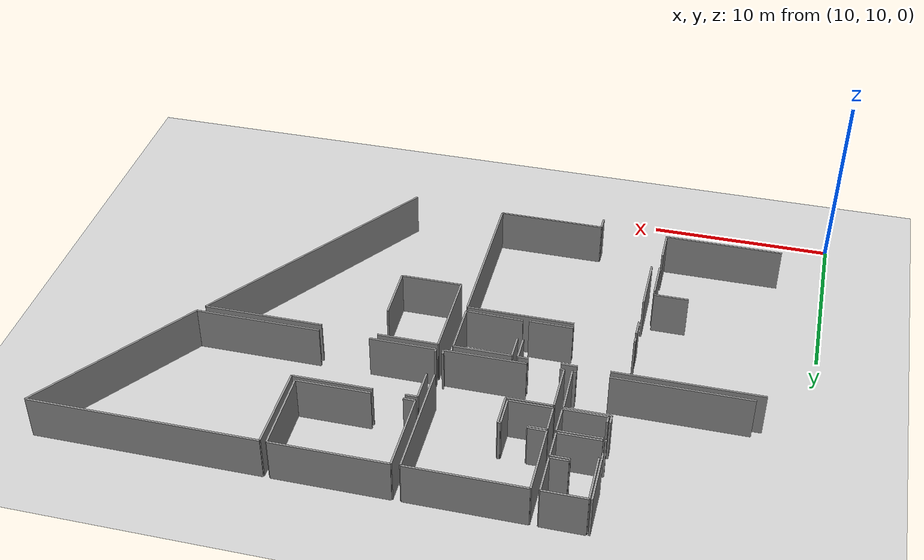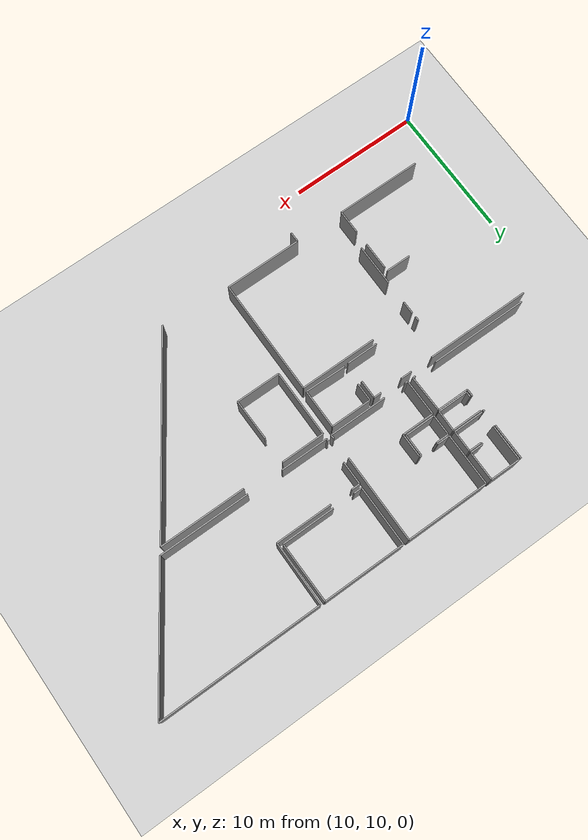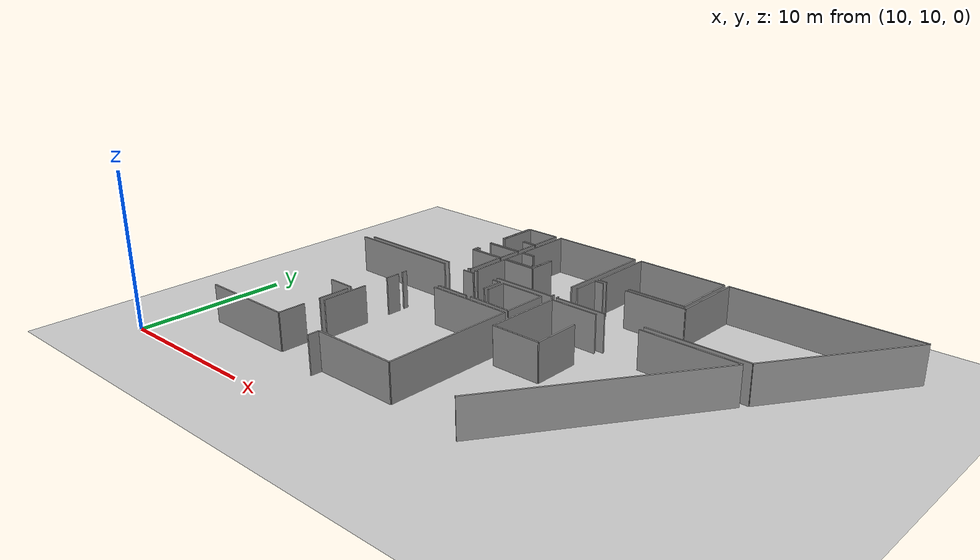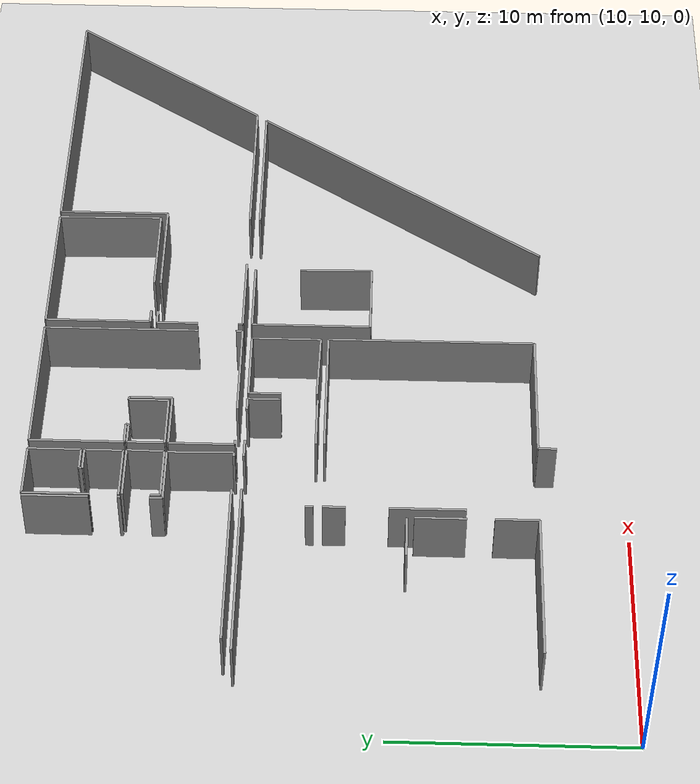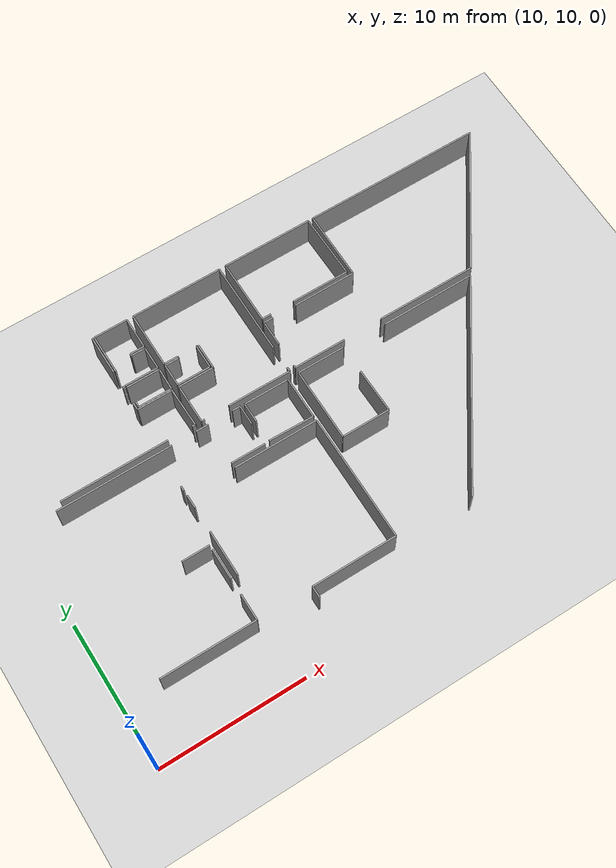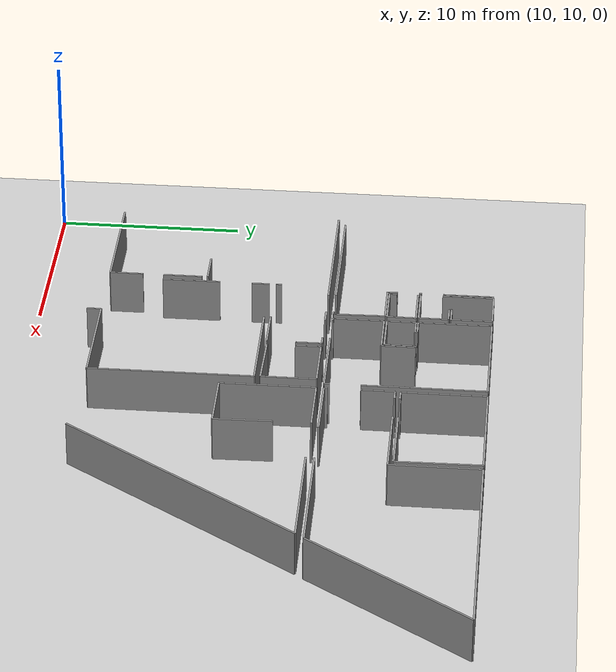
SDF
<sdf version="1.6">
 <world name="default">
  <model name="ground_plane">
   <static>1</static>
   <link name="link">
    <collision name="collision">
     <geometry><plane><normal>0 0 1</normal><size>100 100</size></plane></geometry>
     <surface><friction><ode><mu>100</mu><mu2>50</mu2></ode></friction></surface>
    </collision>
    <visual name="visual">
     <cast_shadows>0</cast_shadows>
     <geometry><plane><normal>0 0 1</normal><size>100 100</size></plane></geometry>
     <material>
      <script><uri>file://media/materials/scripts/gazebo.material</uri><name>Gazebo/Grey</name></script>
     </material>
    </visual>
   </link>
  </model>
  <model name="50053292">
   <static>1</static>
   <link name="Wall_164">
    <collision name="Wall_164_Collision">
     <geometry><box><size>5.84534098775 0.1 2.5</size></box></geometry>
     <pose>2.92267049387 0 1.25 0 0 0</pose>
    </collision>
    <visual name="Wall_164_Visual">
     <pose>2.92267049387 0 1.25 0 0 0</pose>
     <geometry><box><size>5.84534098775 0.1 2.5</size></box></geometry>
     <material>
      <script><uri>file://media/materials/scripts/gazebo.material</uri><name>Gazebo/Grey</name></script>
      <ambient>1 1 1 1</ambient>
     </material>
    </visual>
    <pose>77.2618102611 -22.1409928303 0 0 0 3.14159265359</pose>
   </link>
   <link name="Wall_165">
    <collision name="Wall_165_Collision">
     <geometry><box><size>0.772596511059 0.1 2.5</size></box></geometry>
     <pose>0.38629825553 0 1.25 0 0 0</pose>
    </collision>
    <visual name="Wall_165_Visual">
     <pose>0.38629825553 0 1.25 0 0 0</pose>
     <geometry><box><size>0.772596511059 0.1 2.5</size></box></geometry>
     <material>
      <script><uri>file://media/materials/scripts/gazebo.material</uri><name>Gazebo/Grey</name></script>
      <ambient>1 1 1 1</ambient>
     </material>
    </visual>
    <pose>71.4164692733 -22.1409928303 0 0 0 -1.57079632679</pose>
   </link>
   <link name="Wall_172">
    <collision name="Wall_172_Collision">
     <geometry><box><size>3.14766715989 0.1 2.5</size></box></geometry>
     <pose>1.57383357994 0 1.25 0 0 0</pose>
    </collision>
    <visual name="Wall_172_Visual">
     <pose>1.57383357994 0 1.25 0 0 0</pose>
     <geometry><box><size>3.14766715989 0.1 2.5</size></box></geometry>
     <material>
      <script><uri>file://media/materials/scripts/gazebo.material</uri><name>Gazebo/Grey</name></script>
      <ambient>1 1 1 1</ambient>
     </material>
    </visual>
    <pose>68.0978478304 -19.1618667801 0 0 0 1.57079632679</pose>
   </link>
   <link name="Wall_173">
    <collision name="Wall_173_Collision">
     <geometry><box><size>0.951425359912 0.1 2.5</size></box></geometry>
     <pose>0.475712679956 0 1.25 0 0 0</pose>
    </collision>
    <visual name="Wall_173_Visual">
     <pose>0.475712679956 0 1.25 0 0 0</pose>
     <geometry><box><size>0.951425359912 0.1 2.5</size></box></geometry>
     <material>
      <script><uri>file://media/materials/scripts/gazebo.material</uri><name>Gazebo/Grey</name></script>
      <ambient>1 1 1 1</ambient>
     </material>
    </visual>
    <pose>68.0978478304 -14.2581714496 0 0 0 1.57079632679</pose>
   </link>
   <link name="Wall_174">
    <collision name="Wall_174_Collision">
     <geometry><box><size>5.8356882942 0.1 2.5</size></box></geometry>
     <pose>2.9178441471 0 1.25 0 0 0</pose>
    </collision>
    <visual name="Wall_174_Visual">
     <pose>2.9178441471 0 1.25 0 0 0</pose>
     <geometry><box><size>5.8356882942 0.1 2.5</size></box></geometry>
     <material>
      <script><uri>file://media/materials/scripts/gazebo.material</uri><name>Gazebo/Grey</name></script>
      <ambient>1 1 1 1</ambient>
     </material>
    </visual>
    <pose>71.4228197296 -13.3067460897 0 0 0 0.0</pose>
   </link>
   <link name="Wall_175">
    <collision name="Wall_175_Collision">
     <geometry><box><size>8.83424735782 0.1 2.5</size></box></geometry>
     <pose>4.41712367891 0 1.25 0 0 0</pose>
    </collision>
    <visual name="Wall_175_Visual">
     <pose>4.41712367891 0 1.25 0 0 0</pose>
     <geometry><box><size>8.83424735782 0.1 2.5</size></box></geometry>
     <material>
      <script><uri>file://media/materials/scripts/gazebo.material</uri><name>Gazebo/Grey</name></script>
      <ambient>1 1 1 1</ambient>
     </material>
    </visual>
    <pose>77.2585080238 -13.3067460897 0 0 0 -1.57042252728</pose>
   </link>
   <link name="Wall_219">
    <collision name="Wall_219_Collision">
     <geometry><box><size>6.50286723101 0.1 2.5</size></box></geometry>
     <pose>3.25143361551 0 1.25 0 0 0</pose>
    </collision>
    <visual name="Wall_219_Visual">
     <pose>3.25143361551 0 1.25 0 0 0</pose>
     <geometry><box><size>6.50286723101 0.1 2.5</size></box></geometry>
     <material>
      <script><uri>file://media/materials/scripts/gazebo.material</uri><name>Gazebo/Grey</name></script>
      <ambient>1 1 1 1</ambient>
     </material>
    </visual>
    <pose>67.6462033797 -22.1122887679 0 0 0 3.14159265359</pose>
   </link>
   <link name="Wall_223">
    <collision name="Wall_223_Collision">
     <geometry><box><size>2.13019705466 0.1 2.5</size></box></geometry>
     <pose>1.06509852733 0 1.25 0 0 0</pose>
    </collision>
    <visual name="Wall_223_Visual">
     <pose>1.06509852733 0 1.25 0 0 0</pose>
     <geometry><box><size>2.13019705466 0.1 2.5</size></box></geometry>
     <material>
      <script><uri>file://media/materials/scripts/gazebo.material</uri><name>Gazebo/Grey</name></script>
      <ambient>1 1 1 1</ambient>
     </material>
    </visual>
    <pose>67.6462033797 -17.0427195194 0 0 0 -1.57079632679</pose>
   </link>
   <link name="Wall_224">
    <collision name="Wall_224_Collision">
     <geometry><box><size>1.8129282589 0.1 2.5</size></box></geometry>
     <pose>0.906464129448 0 1.25 0 0 0</pose>
    </collision>
    <visual name="Wall_224_Visual">
     <pose>0.906464129448 0 1.25 0 0 0</pose>
     <geometry><box><size>1.8129282589 0.1 2.5</size></box></geometry>
     <material>
      <script><uri>file://media/materials/scripts/gazebo.material</uri><name>Gazebo/Grey</name></script>
      <ambient>1 1 1 1</ambient>
     </material>
    </visual>
    <pose>67.6462033797 -20.2993605091 0 0 0 -1.57079632679</pose>
   </link>
   <link name="Wall_289">
    <collision name="Wall_289_Collision">
     <geometry><box><size>1.39710038166 0.1 2.5</size></box></geometry>
     <pose>0.698550190831 0 1.25 0 0 0</pose>
    </collision>
    <visual name="Wall_289_Visual">
     <pose>0.698550190831 0 1.25 0 0 0</pose>
     <geometry><box><size>1.39710038166 0.1 2.5</size></box></geometry>
     <material>
      <script><uri>file://media/materials/scripts/gazebo.material</uri><name>Gazebo/Grey</name></script>
      <ambient>1 1 1 1</ambient>
     </material>
    </visual>
    <pose>73.793445059 -11.4054194794 0 0 0 1.57079632679</pose>
   </link>
   <link name="Wall_290">
    <collision name="Wall_290_Collision">
     <geometry><box><size>0.571541065226 0.1 2.5</size></box></geometry>
     <pose>0.285770532613 0 1.25 0 0 0</pose>
    </collision>
    <visual name="Wall_290_Visual">
     <pose>0.285770532613 0 1.25 0 0 0</pose>
     <geometry><box><size>0.571541065226 0.1 2.5</size></box></geometry>
     <material>
      <script><uri>file://media/materials/scripts/gazebo.material</uri><name>Gazebo/Grey</name></script>
      <ambient>1 1 1 1</ambient>
     </material>
    </visual>
    <pose>73.793445059 -10.0083190977 0 0 0 3.14159265359</pose>
   </link>
   <link name="Wall_291">
    <collision name="Wall_291_Collision">
     <geometry><box><size>0.864297099747 0.1 2.5</size></box></geometry>
     <pose>0.432148549873 0 1.25 0 0 0</pose>
    </collision>
    <visual name="Wall_291_Visual">
     <pose>0.432148549873 0 1.25 0 0 0</pose>
     <geometry><box><size>0.864297099747 0.1 2.5</size></box></geometry>
     <material>
      <script><uri>file://media/materials/scripts/gazebo.material</uri><name>Gazebo/Grey</name></script>
      <ambient>1 1 1 1</ambient>
     </material>
    </visual>
    <pose>71.5188386286 -10.0083190977 0 0 0 3.14159265359</pose>
   </link>
   <link name="Wall_292">
    <collision name="Wall_292_Collision">
     <geometry><box><size>7.96296413897 0.1 2.5</size></box></geometry>
     <pose>3.98148206949 0 1.25 0 0 0</pose>
    </collision>
    <visual name="Wall_292_Visual">
     <pose>3.98148206949 0 1.25 0 0 0</pose>
     <geometry><box><size>7.96296413897 0.1 2.5</size></box></geometry>
     <material>
      <script><uri>file://media/materials/scripts/gazebo.material</uri><name>Gazebo/Grey</name></script>
      <ambient>1 1 1 1</ambient>
     </material>
    </visual>
    <pose>68.9383942236 -10.0083190977 0 0 0 3.14159265359</pose>
   </link>
   <link name="Wall_295">
    <collision name="Wall_295_Collision">
     <geometry><box><size>0.336574182855 0.1 2.5</size></box></geometry>
     <pose>0.168287091428 0 1.25 0 0 0</pose>
    </collision>
    <visual name="Wall_295_Visual">
     <pose>0.168287091428 0 1.25 0 0 0</pose>
     <geometry><box><size>0.336574182855 0.1 2.5</size></box></geometry>
     <material>
      <script><uri>file://media/materials/scripts/gazebo.material</uri><name>Gazebo/Grey</name></script>
      <ambient>1 1 1 1</ambient>
     </material>
    </visual>
    <pose>68.0808286075 -12.615435419 0 0 0 -1.57079632679</pose>
   </link>
   <link name="Wall_296">
    <collision name="Wall_296_Collision">
     <geometry><box><size>2.38853540248 0.1 2.5</size></box></geometry>
     <pose>1.19426770124 0 1.25 0 0 0</pose>
    </collision>
    <visual name="Wall_296_Visual">
     <pose>1.19426770124 0 1.25 0 0 0</pose>
     <geometry><box><size>2.38853540248 0.1 2.5</size></box></geometry>
     <material>
      <script><uri>file://media/materials/scripts/gazebo.material</uri><name>Gazebo/Grey</name></script>
      <ambient>1 1 1 1</ambient>
     </material>
    </visual>
    <pose>71.4049114429 -12.9520096019 0 0 0 -0.00122301332195</pose>
   </link>
   <link name="Wall_307">
    <collision name="Wall_307_Collision">
     <geometry><box><size>1.88075113197 0.1 2.5</size></box></geometry>
     <pose>0.940375565984 0 1.25 0 0 0</pose>
    </collision>
    <visual name="Wall_307_Visual">
     <pose>0.940375565984 0 1.25 0 0 0</pose>
     <geometry><box><size>1.88075113197 0.1 2.5</size></box></geometry>
     <material>
      <script><uri>file://media/materials/scripts/gazebo.material</uri><name>Gazebo/Grey</name></script>
      <ambient>1 1 1 1</ambient>
     </material>
    </visual>
    <pose>67.6305812573 -16.7415808826 0 0 0 3.14159265359</pose>
   </link>
   <link name="Wall_312">
    <collision name="Wall_312_Collision">
     <geometry><box><size>0.223155033689 0.1 2.5</size></box></geometry>
     <pose>0.111577516845 0 1.25 0 0 0</pose>
    </collision>
    <visual name="Wall_312_Visual">
     <pose>0.111577516845 0 1.25 0 0 0</pose>
     <geometry><box><size>0.223155033689 0.1 2.5</size></box></geometry>
     <material>
      <script><uri>file://media/materials/scripts/gazebo.material</uri><name>Gazebo/Grey</name></script>
      <ambient>1 1 1 1</ambient>
     </material>
    </visual>
    <pose>70.8512786644 -9.59363430262 0 0 0 3.14159265359</pose>
   </link>
   <link name="Wall_313">
    <collision name="Wall_313_Collision">
     <geometry><box><size>7.42406441903 0.1 2.5</size></box></geometry>
     <pose>3.71203220951 0 1.25 0 0 0</pose>
    </collision>
    <visual name="Wall_313_Visual">
     <pose>3.71203220951 0 1.25 0 0 0</pose>
     <geometry><box><size>7.42406441903 0.1 2.5</size></box></geometry>
     <material>
      <script><uri>file://media/materials/scripts/gazebo.material</uri><name>Gazebo/Grey</name></script>
      <ambient>1 1 1 1</ambient>
     </material>
    </visual>
    <pose>68.9162946358 -9.59363430262 0 0 0 3.14159265359</pose>
   </link>
   <link name="Wall_316">
    <collision name="Wall_316_Collision">
     <geometry><box><size>2.75762213515 0.1 2.5</size></box></geometry>
     <pose>1.37881106758 0 1.25 0 0 0</pose>
    </collision>
    <visual name="Wall_316_Visual">
     <pose>1.37881106758 0 1.25 0 0 0</pose>
     <geometry><box><size>2.75762213515 0.1 2.5</size></box></geometry>
     <material>
      <script><uri>file://media/materials/scripts/gazebo.material</uri><name>Gazebo/Grey</name></script>
      <ambient>1 1 1 1</ambient>
     </material>
    </visual>
    <pose>68.3640589576 -1.04160183909 0 0 0 -1.57079632679</pose>
   </link>
   <link name="Wall_317">
    <collision name="Wall_317_Collision">
     <geometry><box><size>0.137931910408 0.1 2.5</size></box></geometry>
     <pose>0.0689659552039 0 1.25 0 0 0</pose>
    </collision>
    <visual name="Wall_317_Visual">
     <pose>0.0689659552039 0 1.25 0 0 0</pose>
     <geometry><box><size>0.137931910408 0.1 2.5</size></box></geometry>
     <material>
      <script><uri>file://media/materials/scripts/gazebo.material</uri><name>Gazebo/Grey</name></script>
      <ambient>1 1 1 1</ambient>
     </material>
    </visual>
    <pose>68.3640589576 -4.97024811233 0 0 0 -1.57079632679</pose>
   </link>
   <link name="Wall_318">
    <collision name="Wall_318_Collision">
     <geometry><box><size>0.549060449993 0.1 2.5</size></box></geometry>
     <pose>0.274530224997 0 1.25 0 0 0</pose>
    </collision>
    <visual name="Wall_318_Visual">
     <pose>0.274530224997 0 1.25 0 0 0</pose>
     <geometry><box><size>0.549060449993 0.1 2.5</size></box></geometry>
     <material>
      <script><uri>file://media/materials/scripts/gazebo.material</uri><name>Gazebo/Grey</name></script>
      <ambient>1 1 1 1</ambient>
     </material>
    </visual>
    <pose>68.3640589576 -6.27196464066 0 0 0 -1.57079632679</pose>
   </link>
   <link name="Wall_319">
    <collision name="Wall_319_Collision">
     <geometry><box><size>2.43273279185 0.1 2.5</size></box></geometry>
     <pose>1.21636639593 0 1.25 0 0 0</pose>
    </collision>
    <visual name="Wall_319_Visual">
     <pose>1.21636639593 0 1.25 0 0 0</pose>
     <geometry><box><size>2.43273279185 0.1 2.5</size></box></geometry>
     <material>
      <script><uri>file://media/materials/scripts/gazebo.material</uri><name>Gazebo/Grey</name></script>
      <ambient>1 1 1 1</ambient>
     </material>
    </visual>
    <pose>68.3640589576 -6.82102509065 0 0 0 0.0</pose>
   </link>
   <link name="Wall_320">
    <collision name="Wall_320_Collision">
     <geometry><box><size>2.77314454477 0.1 2.5</size></box></geometry>
     <pose>1.38657227239 0 1.25 0 0 0</pose>
    </collision>
    <visual name="Wall_320_Visual">
     <pose>1.38657227239 0 1.25 0 0 0</pose>
     <geometry><box><size>2.77314454477 0.1 2.5</size></box></geometry>
     <material>
      <script><uri>file://media/materials/scripts/gazebo.material</uri><name>Gazebo/Grey</name></script>
      <ambient>1 1 1 1</ambient>
     </material>
    </visual>
    <pose>70.7967917495 -6.82102509065 0 0 0 -1.55114700078</pose>
   </link>
   <link name="Wall_321">
    <collision name="Wall_321_Collision">
     <geometry><box><size>2.95550235284 0.1 2.5</size></box></geometry>
     <pose>1.47775117642 0 1.25 0 0 0</pose>
    </collision>
    <visual name="Wall_321_Visual">
     <pose>1.47775117642 0 1.25 0 0 0</pose>
     <geometry><box><size>2.95550235284 0.1 2.5</size></box></geometry>
     <material>
      <script><uri>file://media/materials/scripts/gazebo.material</uri><name>Gazebo/Grey</name></script>
      <ambient>1 1 1 1</ambient>
     </material>
    </visual>
    <pose>77.2392026367 -12.9841429107 0 0 0 1.57079632679</pose>
   </link>
   <link name="Wall_322">
    <collision name="Wall_322_Collision">
     <geometry><box><size>3.12734569979 0.1 2.5</size></box></geometry>
     <pose>1.56367284989 0 1.25 0 0 0</pose>
    </collision>
    <visual name="Wall_322_Visual">
     <pose>1.56367284989 0 1.25 0 0 0</pose>
     <geometry><box><size>3.12734569979 0.1 2.5</size></box></geometry>
     <material>
      <script><uri>file://media/materials/scripts/gazebo.material</uri><name>Gazebo/Grey</name></script>
      <ambient>1 1 1 1</ambient>
     </material>
    </visual>
    <pose>77.2392026367 -10.0286405578 0 0 0 3.14159265359</pose>
   </link>
   <link name="Wall_323">
    <collision name="Wall_323_Collision">
     <geometry><box><size>1.37677892157 0.1 2.5</size></box></geometry>
     <pose>0.688389460783 0 1.25 0 0 0</pose>
    </collision>
    <visual name="Wall_323_Visual">
     <pose>0.688389460783 0 1.25 0 0 0</pose>
     <geometry><box><size>1.37677892157 0.1 2.5</size></box></geometry>
     <material>
      <script><uri>file://media/materials/scripts/gazebo.material</uri><name>Gazebo/Grey</name></script>
      <ambient>1 1 1 1</ambient>
     </material>
    </visual>
    <pose>74.1118569369 -10.0286405578 0 0 0 -1.57079632679</pose>
   </link>
   <link name="Wall_324">
    <collision name="Wall_324_Collision">
     <geometry><box><size>3.12820720881 0.1 2.5</size></box></geometry>
     <pose>1.5641036044 0 1.25 0 0 0</pose>
    </collision>
    <visual name="Wall_324_Visual">
     <pose>1.5641036044 0 1.25 0 0 0</pose>
     <geometry><box><size>3.12820720881 0.1 2.5</size></box></geometry>
     <material>
      <script><uri>file://media/materials/scripts/gazebo.material</uri><name>Gazebo/Grey</name></script>
      <ambient>1 1 1 1</ambient>
     </material>
    </visual>
    <pose>74.1118569369 -12.9107316361 0 0 0 -0.023469677551</pose>
   </link>
   <link name="Wall_325">
    <collision name="Wall_325_Collision">
     <geometry><box><size>4.43261848364 0.1 2.5</size></box></geometry>
     <pose>2.21630924182 0 1.25 0 0 0</pose>
    </collision>
    <visual name="Wall_325_Visual">
     <pose>2.21630924182 0 1.25 0 0 0</pose>
     <geometry><box><size>4.43261848364 0.1 2.5</size></box></geometry>
     <material>
      <script><uri>file://media/materials/scripts/gazebo.material</uri><name>Gazebo/Grey</name></script>
      <ambient>1 1 1 1</ambient>
     </material>
    </visual>
    <pose>77.6545224774 -9.60188989579 0 0 0 3.14159265359</pose>
   </link>
   <link name="Wall_326">
    <collision name="Wall_326_Collision">
     <geometry><box><size>0.21591551353 0.1 2.5</size></box></geometry>
     <pose>0.107957756765 0 1.25 0 0 0</pose>
    </collision>
    <visual name="Wall_326_Visual">
     <pose>0.107957756765 0 1.25 0 0 0</pose>
     <geometry><box><size>0.21591551353 0.1 2.5</size></box></geometry>
     <material>
      <script><uri>file://media/materials/scripts/gazebo.material</uri><name>Gazebo/Grey</name></script>
      <ambient>1 1 1 1</ambient>
     </material>
    </visual>
    <pose>71.4945798856 -9.60188989579 0 0 0 3.14159265359</pose>
   </link>
   <link name="Wall_327">
    <collision name="Wall_327_Collision">
     <geometry><box><size>2.75609802564 0.1 2.5</size></box></geometry>
     <pose>1.37804901282 0 1.25 0 0 0</pose>
    </collision>
    <visual name="Wall_327_Visual">
     <pose>1.37804901282 0 1.25 0 0 0</pose>
     <geometry><box><size>2.75609802564 0.1 2.5</size></box></geometry>
     <material>
      <script><uri>file://media/materials/scripts/gazebo.material</uri><name>Gazebo/Grey</name></script>
      <ambient>1 1 1 1</ambient>
     </material>
    </visual>
    <pose>71.278664372 -9.60188989579 0 0 0 1.57079632679</pose>
   </link>
   <link name="Wall_328">
    <collision name="Wall_328_Collision">
     <geometry><box><size>2.46448507325 0.1 2.5</size></box></geometry>
     <pose>1.23224253663 0 1.25 0 0 0</pose>
    </collision>
    <visual name="Wall_328_Visual">
     <pose>1.23224253663 0 1.25 0 0 0</pose>
     <geometry><box><size>2.46448507325 0.1 2.5</size></box></geometry>
     <material>
      <script><uri>file://media/materials/scripts/gazebo.material</uri><name>Gazebo/Grey</name></script>
      <ambient>1 1 1 1</ambient>
     </material>
    </visual>
    <pose>71.278664372 -6.84579187015 0 0 0 0.0</pose>
   </link>
   <link name="Wall_329">
    <collision name="Wall_329_Collision">
     <geometry><box><size>1.8188976878 0.1 2.5</size></box></geometry>
     <pose>0.909448843899 0 1.25 0 0 0</pose>
    </collision>
    <visual name="Wall_329_Visual">
     <pose>0.909448843899 0 1.25 0 0 0</pose>
     <geometry><box><size>1.8188976878 0.1 2.5</size></box></geometry>
     <material>
      <script><uri>file://media/materials/scripts/gazebo.material</uri><name>Gazebo/Grey</name></script>
      <ambient>1 1 1 1</ambient>
     </material>
    </visual>
    <pose>73.7431494453 -6.84579187015 0 0 0 1.57079632679</pose>
   </link>
   <link name="Wall_330">
    <collision name="Wall_330_Collision">
     <geometry><box><size>0.133613600137 0.1 2.5</size></box></geometry>
     <pose>0.0668068000686 0 1.25 0 0 0</pose>
    </collision>
    <visual name="Wall_330_Visual">
     <pose>0.0668068000686 0 1.25 0 0 0</pose>
     <geometry><box><size>0.133613600137 0.1 2.5</size></box></geometry>
     <material>
      <script><uri>file://media/materials/scripts/gazebo.material</uri><name>Gazebo/Grey</name></script>
      <ambient>1 1 1 1</ambient>
     </material>
    </visual>
    <pose>73.7431494453 -5.02689418235 0 0 0 3.14159265359</pose>
   </link>
   <link name="Wall_331">
    <collision name="Wall_331_Collision">
     <geometry><box><size>1.67017000171 0.1 2.5</size></box></geometry>
     <pose>0.835085000857 0 1.25 0 0 0</pose>
    </collision>
    <visual name="Wall_331_Visual">
     <pose>0.835085000857 0 1.25 0 0 0</pose>
     <geometry><box><size>1.67017000171 0.1 2.5</size></box></geometry>
     <material>
      <script><uri>file://media/materials/scripts/gazebo.material</uri><name>Gazebo/Grey</name></script>
      <ambient>1 1 1 1</ambient>
     </material>
    </visual>
    <pose>73.6095358452 -5.02689418235 0 0 0 -1.57079632679</pose>
   </link>
   <link name="Wall_332">
    <collision name="Wall_332_Collision">
     <geometry><box><size>2.32159980695 0.1 2.5</size></box></geometry>
     <pose>1.16079990347 0 1.25 0 0 0</pose>
    </collision>
    <visual name="Wall_332_Visual">
     <pose>1.16079990347 0 1.25 0 0 0</pose>
     <geometry><box><size>2.32159980695 0.1 2.5</size></box></geometry>
     <material>
      <script><uri>file://media/materials/scripts/gazebo.material</uri><name>Gazebo/Grey</name></script>
      <ambient>1 1 1 1</ambient>
     </material>
    </visual>
    <pose>73.6095358452 -6.69706418406 0 0 0 3.14159265359</pose>
   </link>
   <link name="Wall_333">
    <collision name="Wall_333_Collision">
     <geometry><box><size>1.56995980161 0.1 2.5</size></box></geometry>
     <pose>0.784979900806 0 1.25 0 0 0</pose>
    </collision>
    <visual name="Wall_333_Visual">
     <pose>0.784979900806 0 1.25 0 0 0</pose>
     <geometry><box><size>1.56995980161 0.1 2.5</size></box></geometry>
     <material>
      <script><uri>file://media/materials/scripts/gazebo.material</uri><name>Gazebo/Grey</name></script>
      <ambient>1 1 1 1</ambient>
     </material>
    </visual>
    <pose>71.2879360382 -6.69706418406 0 0 0 1.57079632679</pose>
   </link>
   <link name="Wall_334">
    <collision name="Wall_334_Collision">
     <geometry><box><size>0.96044300783 0.1 2.5</size></box></geometry>
     <pose>0.480221503915 0 1.25 0 0 0</pose>
    </collision>
    <visual name="Wall_334_Visual">
     <pose>0.480221503915 0 1.25 0 0 0</pose>
     <geometry><box><size>0.96044300783 0.1 2.5</size></box></geometry>
     <material>
      <script><uri>file://media/materials/scripts/gazebo.material</uri><name>Gazebo/Grey</name></script>
      <ambient>1 1 1 1</ambient>
     </material>
    </visual>
    <pose>71.2879360382 -5.12710438245 0 0 0 0.0</pose>
   </link>
   <link name="Wall_335">
    <collision name="Wall_335_Collision">
     <geometry><box><size>0.116975404683 0.1 2.5</size></box></geometry>
     <pose>0.0584877023414 0 1.25 0 0 0</pose>
    </collision>
    <visual name="Wall_335_Visual">
     <pose>0.0584877023414 0 1.25 0 0 0</pose>
     <geometry><box><size>0.116975404683 0.1 2.5</size></box></geometry>
     <material>
      <script><uri>file://media/materials/scripts/gazebo.material</uri><name>Gazebo/Grey</name></script>
      <ambient>1 1 1 1</ambient>
     </material>
    </visual>
    <pose>72.248379046 -5.12710438245 0 0 0 1.57079632679</pose>
   </link>
   <link name="Wall_336">
    <collision name="Wall_336_Collision">
     <geometry><box><size>0.96044300783 0.1 2.5</size></box></geometry>
     <pose>0.480221503915 0 1.25 0 0 0</pose>
    </collision>
    <visual name="Wall_336_Visual">
     <pose>0.480221503915 0 1.25 0 0 0</pose>
     <geometry><box><size>0.96044300783 0.1 2.5</size></box></geometry>
     <material>
      <script><uri>file://media/materials/scripts/gazebo.material</uri><name>Gazebo/Grey</name></script>
      <ambient>1 1 1 1</ambient>
     </material>
    </visual>
    <pose>72.248379046 -5.01012897777 0 0 0 3.14159265359</pose>
   </link>
   <link name="Wall_337">
    <collision name="Wall_337_Collision">
     <geometry><box><size>3.94934876071 0.1 2.5</size></box></geometry>
     <pose>1.97467438035 0 1.25 0 0 0</pose>
    </collision>
    <visual name="Wall_337_Visual">
     <pose>1.97467438035 0 1.25 0 0 0</pose>
     <geometry><box><size>3.94934876071 0.1 2.5</size></box></geometry>
     <material>
      <script><uri>file://media/materials/scripts/gazebo.material</uri><name>Gazebo/Grey</name></script>
      <ambient>1 1 1 1</ambient>
     </material>
    </visual>
    <pose>71.2879360382 -5.01012897777 0 0 0 1.57079632679</pose>
   </link>
   <link name="Wall_338">
    <collision name="Wall_338_Collision">
     <geometry><box><size>6.33889844985 0.1 2.5</size></box></geometry>
     <pose>3.16944922493 0 1.25 0 0 0</pose>
    </collision>
    <visual name="Wall_338_Visual">
     <pose>3.16944922493 0 1.25 0 0 0</pose>
     <geometry><box><size>6.33889844985 0.1 2.5</size></box></geometry>
     <material>
      <script><uri>file://media/materials/scripts/gazebo.material</uri><name>Gazebo/Grey</name></script>
      <ambient>1 1 1 1</ambient>
     </material>
    </visual>
    <pose>71.2879360382 -1.06078021706 0 0 0 0.0</pose>
   </link>
   <link name="Wall_339">
    <collision name="Wall_339_Collision">
     <geometry><box><size>6.62797121973 0.1 2.5</size></box></geometry>
     <pose>3.31398560987 0 1.25 0 0 0</pose>
    </collision>
    <visual name="Wall_339_Visual">
     <pose>3.31398560987 0 1.25 0 0 0</pose>
     <geometry><box><size>6.62797121973 0.1 2.5</size></box></geometry>
     <material>
      <script><uri>file://media/materials/scripts/gazebo.material</uri><name>Gazebo/Grey</name></script>
      <ambient>1 1 1 1</ambient>
     </material>
    </visual>
    <pose>77.6268344881 -1.06078021706 0 0 0 -1.57079632679</pose>
   </link>
   <link name="Wall_340">
    <collision name="Wall_340_Collision">
     <geometry><box><size>0.29140720911 0.1 2.5</size></box></geometry>
     <pose>0.145703604555 0 1.25 0 0 0</pose>
    </collision>
    <visual name="Wall_340_Visual">
     <pose>0.145703604555 0 1.25 0 0 0</pose>
     <geometry><box><size>0.29140720911 0.1 2.5</size></box></geometry>
     <material>
      <script><uri>file://media/materials/scripts/gazebo.material</uri><name>Gazebo/Grey</name></script>
      <ambient>1 1 1 1</ambient>
     </material>
    </visual>
    <pose>77.6268344881 -9.31180105291 0 0 0 -1.47563800888</pose>
   </link>
   <link name="Wall_341">
    <collision name="Wall_341_Collision">
     <geometry><box><size>2.32375896208 0.1 2.5</size></box></geometry>
     <pose>1.16187948104 0 1.25 0 0 0</pose>
    </collision>
    <visual name="Wall_341_Visual">
     <pose>1.16187948104 0 1.25 0 0 0</pose>
     <geometry><box><size>2.32375896208 0.1 2.5</size></box></geometry>
     <material>
      <script><uri>file://media/materials/scripts/gazebo.material</uri><name>Gazebo/Grey</name></script>
      <ambient>1 1 1 1</ambient>
     </material>
    </visual>
    <pose>70.8257498301 -5.01381224241 0 0 0 3.14159265359</pose>
   </link>
   <link name="Wall_342">
    <collision name="Wall_342_Collision">
     <geometry><box><size>2.76409960056 0.1 2.5</size></box></geometry>
     <pose>1.38204980028 0 1.25 0 0 0</pose>
    </collision>
    <visual name="Wall_342_Visual">
     <pose>1.38204980028 0 1.25 0 0 0</pose>
     <geometry><box><size>2.76409960056 0.1 2.5</size></box></geometry>
     <material>
      <script><uri>file://media/materials/scripts/gazebo.material</uri><name>Gazebo/Grey</name></script>
      <ambient>1 1 1 1</ambient>
     </material>
    </visual>
    <pose>68.501990868 -3.82424477199 0 0 0 1.57079632679</pose>
   </link>
   <link name="Wall_343">
    <collision name="Wall_343_Collision">
     <geometry><box><size>2.33506277426 0.1 2.5</size></box></geometry>
     <pose>1.16753138713 0 1.25 0 0 0</pose>
    </collision>
    <visual name="Wall_343_Visual">
     <pose>1.16753138713 0 1.25 0 0 0</pose>
     <geometry><box><size>2.33506277426 0.1 2.5</size></box></geometry>
     <material>
      <script><uri>file://media/materials/scripts/gazebo.material</uri><name>Gazebo/Grey</name></script>
      <ambient>1 1 1 1</ambient>
     </material>
    </visual>
    <pose>68.501990868 -1.06014517143 0 0 0 0.0</pose>
   </link>
   <link name="Wall_344">
    <collision name="Wall_344_Collision">
     <geometry><box><size>2.21300700455 0.1 2.5</size></box></geometry>
     <pose>1.10650350228 0 1.25 0 0 0</pose>
    </collision>
    <visual name="Wall_344_Visual">
     <pose>1.10650350228 0 1.25 0 0 0</pose>
     <geometry><box><size>2.21300700455 0.1 2.5</size></box></geometry>
     <material>
      <script><uri>file://media/materials/scripts/gazebo.material</uri><name>Gazebo/Grey</name></script>
      <ambient>1 1 1 1</ambient>
     </material>
    </visual>
    <pose>70.8370536423 -1.06014517143 0 0 0 -1.57079632679</pose>
   </link>
   <link name="Wall_345">
    <collision name="Wall_345_Collision">
     <geometry><box><size>0.98444773257 0.1 2.5</size></box></geometry>
     <pose>0.492223866285 0 1.25 0 0 0</pose>
    </collision>
    <visual name="Wall_345_Visual">
     <pose>0.492223866285 0 1.25 0 0 0</pose>
     <geometry><box><size>0.98444773257 0.1 2.5</size></box></geometry>
     <material>
      <script><uri>file://media/materials/scripts/gazebo.material</uri><name>Gazebo/Grey</name></script>
      <ambient>1 1 1 1</ambient>
     </material>
    </visual>
    <pose>70.8370536423 -3.27315217598 0 0 0 3.14159265359</pose>
   </link>
   <link name="Wall_346">
    <collision name="Wall_346_Collision">
     <geometry><box><size>0.137804901282 0.1 2.5</size></box></geometry>
     <pose>0.0689024506411 0 1.25 0 0 0</pose>
    </collision>
    <visual name="Wall_346_Visual">
     <pose>0.0689024506411 0 1.25 0 0 0</pose>
     <geometry><box><size>0.137804901282 0.1 2.5</size></box></geometry>
     <material>
      <script><uri>file://media/materials/scripts/gazebo.material</uri><name>Gazebo/Grey</name></script>
      <ambient>1 1 1 1</ambient>
     </material>
    </visual>
    <pose>69.8526059097 -3.27315217598 0 0 0 -1.57079632679</pose>
   </link>
   <link name="Wall_347">
    <collision name="Wall_347_Collision">
     <geometry><box><size>0.977335221536 0.1 2.5</size></box></geometry>
     <pose>0.488667610768 0 1.25 0 0 0</pose>
    </collision>
    <visual name="Wall_347_Visual">
     <pose>0.488667610768 0 1.25 0 0 0</pose>
     <geometry><box><size>0.977335221536 0.1 2.5</size></box></geometry>
     <material>
      <script><uri>file://media/materials/scripts/gazebo.material</uri><name>Gazebo/Grey</name></script>
      <ambient>1 1 1 1</ambient>
     </material>
    </visual>
    <pose>69.8526059097 -3.41095707727 0 0 0 0.0</pose>
   </link>
   <link name="Wall_348">
    <collision name="Wall_348_Collision">
     <geometry><box><size>1.60286064504 0.1 2.5</size></box></geometry>
     <pose>0.801430322522 0 1.25 0 0 0</pose>
    </collision>
    <visual name="Wall_348_Visual">
     <pose>0.801430322522 0 1.25 0 0 0</pose>
     <geometry><box><size>1.60286064504 0.1 2.5</size></box></geometry>
     <material>
      <script><uri>file://media/materials/scripts/gazebo.material</uri><name>Gazebo/Grey</name></script>
      <ambient>1 1 1 1</ambient>
     </material>
    </visual>
    <pose>70.8299411313 -3.41095707727 0 0 0 -1.57341121782</pose>
   </link>
   <link name="Wall_349">
    <collision name="Wall_349_Collision">
     <geometry><box><size>2.31321720466 0.1 2.5</size></box></geometry>
     <pose>1.15660860233 0 1.25 0 0 0</pose>
    </collision>
    <visual name="Wall_349_Visual">
     <pose>1.15660860233 0 1.25 0 0 0</pose>
     <geometry><box><size>2.31321720466 0.1 2.5</size></box></geometry>
     <material>
      <script><uri>file://media/materials/scripts/gazebo.material</uri><name>Gazebo/Grey</name></script>
      <ambient>1 1 1 1</ambient>
     </material>
    </visual>
    <pose>70.82867104 -6.71370237952 0 0 0 3.14159265359</pose>
   </link>
   <link name="Wall_350">
    <collision name="Wall_350_Collision">
     <geometry><box><size>0.409096393576 0.1 2.5</size></box></geometry>
     <pose>0.204548196788 0 1.25 0 0 0</pose>
    </collision>
    <visual name="Wall_350_Visual">
     <pose>0.204548196788 0 1.25 0 0 0</pose>
     <geometry><box><size>0.409096393576 0.1 2.5</size></box></geometry>
     <material>
      <script><uri>file://media/materials/scripts/gazebo.material</uri><name>Gazebo/Grey</name></script>
      <ambient>1 1 1 1</ambient>
     </material>
    </visual>
    <pose>68.5154538354 -6.71370237952 0 0 0 1.57079632679</pose>
   </link>
   <link name="Wall_351">
    <collision name="Wall_351_Collision">
     <geometry><box><size>2.3382380024 0.1 2.5</size></box></geometry>
     <pose>1.1691190012 0 1.25 0 0 0</pose>
    </collision>
    <visual name="Wall_351_Visual">
     <pose>1.1691190012 0 1.25 0 0 0</pose>
     <geometry><box><size>2.3382380024 0.1 2.5</size></box></geometry>
     <material>
      <script><uri>file://media/materials/scripts/gazebo.material</uri><name>Gazebo/Grey</name></script>
      <ambient>1 1 1 1</ambient>
     </material>
    </visual>
    <pose>68.5154538354 -5.15212518019 0 0 0 0.0</pose>
   </link>
   <link name="Wall_352">
    <collision name="Wall_352_Collision">
     <geometry><box><size>1.56177763775 0.1 2.5</size></box></geometry>
     <pose>0.780888818873 0 1.25 0 0 0</pose>
    </collision>
    <visual name="Wall_352_Visual">
     <pose>0.780888818873 0 1.25 0 0 0</pose>
     <geometry><box><size>1.56177763775 0.1 2.5</size></box></geometry>
     <material>
      <script><uri>file://media/materials/scripts/gazebo.material</uri><name>Gazebo/Grey</name></script>
      <ambient>1 1 1 1</ambient>
     </material>
    </visual>
    <pose>70.8536918378 -5.15212518019 0 0 0 -1.58681772932</pose>
   </link>
   <link name="Wall_353">
    <collision name="Wall_353_Collision">
     <geometry><box><size>6.88135442532 0.1 2.5</size></box></geometry>
     <pose>3.44067721266 0 1.25 0 0 0</pose>
    </collision>
    <visual name="Wall_353_Visual">
     <pose>3.44067721266 0 1.25 0 0 0</pose>
     <geometry><box><size>6.88135442532 0.1 2.5</size></box></geometry>
     <material>
      <script><uri>file://media/materials/scripts/gazebo.material</uri><name>Gazebo/Grey</name></script>
      <ambient>1 1 1 1</ambient>
     </material>
    </visual>
    <pose>91.3016530238 -9.58436263646 0 0 0 3.14159265359</pose>
   </link>
   <link name="Wall_354">
    <collision name="Wall_354_Collision">
     <geometry><box><size>3.61823597025 0.1 2.5</size></box></geometry>
     <pose>1.80911798513 0 1.25 0 0 0</pose>
    </collision>
    <visual name="Wall_354_Visual">
     <pose>1.80911798513 0 1.25 0 0 0</pose>
     <geometry><box><size>3.61823597025 0.1 2.5</size></box></geometry>
     <material>
      <script><uri>file://media/materials/scripts/gazebo.material</uri><name>Gazebo/Grey</name></script>
      <ambient>1 1 1 1</ambient>
     </material>
    </visual>
    <pose>81.6664867371 -9.58436263646 0 0 0 3.14159265359</pose>
   </link>
   <link name="Wall_355">
    <collision name="Wall_355_Collision">
     <geometry><box><size>0.198388254196 0.1 2.5</size></box></geometry>
     <pose>0.099194127098 0 1.25 0 0 0</pose>
    </collision>
    <visual name="Wall_355_Visual">
     <pose>0.099194127098 0 1.25 0 0 0</pose>
     <geometry><box><size>0.198388254196 0.1 2.5</size></box></geometry>
     <material>
      <script><uri>file://media/materials/scripts/gazebo.material</uri><name>Gazebo/Grey</name></script>
      <ambient>1 1 1 1</ambient>
     </material>
    </visual>
    <pose>78.0482507668 -9.58436263646 0 0 0 1.57079632679</pose>
   </link>
   <link name="Wall_356">
    <collision name="Wall_356_Collision">
     <geometry><box><size>1.77812775848 0.1 2.5</size></box></geometry>
     <pose>0.88906387924 0 1.25 0 0 0</pose>
    </collision>
    <visual name="Wall_356_Visual">
     <pose>0.88906387924 0 1.25 0 0 0</pose>
     <geometry><box><size>1.77812775848 0.1 2.5</size></box></geometry>
     <material>
      <script><uri>file://media/materials/scripts/gazebo.material</uri><name>Gazebo/Grey</name></script>
      <ambient>1 1 1 1</ambient>
     </material>
    </visual>
    <pose>78.0482507668 -7.64594936146 0 0 0 1.57079632679</pose>
   </link>
   <link name="Wall_357">
    <collision name="Wall_357_Collision">
     <geometry><box><size>0.647746540589 0.1 2.5</size></box></geometry>
     <pose>0.323873270294 0 1.25 0 0 0</pose>
    </collision>
    <visual name="Wall_357_Visual">
     <pose>0.323873270294 0 1.25 0 0 0</pose>
     <geometry><box><size>0.647746540589 0.1 2.5</size></box></geometry>
     <material>
      <script><uri>file://media/materials/scripts/gazebo.material</uri><name>Gazebo/Grey</name></script>
      <ambient>1 1 1 1</ambient>
     </material>
    </visual>
    <pose>78.0482507668 -5.86782160298 0 0 0 0.0</pose>
   </link>
   <link name="Wall_358">
    <collision name="Wall_358_Collision">
     <geometry><box><size>4.31831027059 0.1 2.5</size></box></geometry>
     <pose>2.1591551353 0 1.25 0 0 0</pose>
    </collision>
    <visual name="Wall_358_Visual">
     <pose>2.1591551353 0 1.25 0 0 0</pose>
     <geometry><box><size>4.31831027059 0.1 2.5</size></box></geometry>
     <material>
      <script><uri>file://media/materials/scripts/gazebo.material</uri><name>Gazebo/Grey</name></script>
      <ambient>1 1 1 1</ambient>
     </material>
    </visual>
    <pose>80.385218678 -5.86782160298 0 0 0 0.0</pose>
   </link>
   <link name="Wall_359">
    <collision name="Wall_359_Collision">
     <geometry><box><size>4.81364586046 0.1 2.5</size></box></geometry>
     <pose>2.40682293023 0 1.25 0 0 0</pose>
    </collision>
    <visual name="Wall_359_Visual">
     <pose>2.40682293023 0 1.25 0 0 0</pose>
     <geometry><box><size>4.81364586046 0.1 2.5</size></box></geometry>
     <material>
      <script><uri>file://media/materials/scripts/gazebo.material</uri><name>Gazebo/Grey</name></script>
      <ambient>1 1 1 1</ambient>
     </material>
    </visual>
    <pose>84.7035289486 -5.86782160298 0 0 0 1.57079632679</pose>
   </link>
   <link name="Wall_360">
    <collision name="Wall_360_Collision">
     <geometry><box><size>12.4087915717 0.1 2.5</size></box></geometry>
     <pose>6.20439578584 0 1.25 0 0 0</pose>
    </collision>
    <visual name="Wall_360_Visual">
     <pose>6.20439578584 0 1.25 0 0 0</pose>
     <geometry><box><size>12.4087915717 0.1 2.5</size></box></geometry>
     <material>
      <script><uri>file://media/materials/scripts/gazebo.material</uri><name>Gazebo/Grey</name></script>
      <ambient>1 1 1 1</ambient>
     </material>
    </visual>
    <pose>84.7035289486 -1.05417574253 0 0 0 0.0</pose>
   </link>
   <link name="Wall_361">
    <collision name="Wall_361_Collision">
     <geometry><box><size>10.3212375808 0.1 2.5</size></box></geometry>
     <pose>5.16061879041 0 1.25 0 0 0</pose>
    </collision>
    <visual name="Wall_361_Visual">
     <pose>5.16061879041 0 1.25 0 0 0</pose>
     <geometry><box><size>10.3212375808 0.1 2.5</size></box></geometry>
     <material>
      <script><uri>file://media/materials/scripts/gazebo.material</uri><name>Gazebo/Grey</name></script>
      <ambient>1 1 1 1</ambient>
     </material>
    </visual>
    <pose>97.1123205202 -1.05417574253 0 0 0 -2.16878542365</pose>
   </link>
   <link name="Wall_362">
    <collision name="Wall_362_Collision">
     <geometry><box><size>4.01374238739 0.1 2.5</size></box></geometry>
     <pose>2.0068711937 0 1.25 0 0 0</pose>
    </collision>
    <visual name="Wall_362_Visual">
     <pose>2.0068711937 0 1.25 0 0 0</pose>
     <geometry><box><size>4.01374238739 0.1 2.5</size></box></geometry>
     <material>
      <script><uri>file://media/materials/scripts/gazebo.material</uri><name>Gazebo/Grey</name></script>
      <ambient>1 1 1 1</ambient>
     </material>
    </visual>
    <pose>84.4173773886 -5.57912986048 0 0 0 3.14159265359</pose>
   </link>
   <link name="Wall_363">
    <collision name="Wall_363_Collision">
     <geometry><box><size>0.629457226502 0.1 2.5</size></box></geometry>
     <pose>0.314728613251 0 1.25 0 0 0</pose>
    </collision>
    <visual name="Wall_363_Visual">
     <pose>0.314728613251 0 1.25 0 0 0</pose>
     <geometry><box><size>0.629457226502 0.1 2.5</size></box></geometry>
     <material>
      <script><uri>file://media/materials/scripts/gazebo.material</uri><name>Gazebo/Grey</name></script>
      <ambient>1 1 1 1</ambient>
     </material>
    </visual>
    <pose>78.7235582877 -5.57912986048 0 0 0 3.14159265359</pose>
   </link>
   <link name="Wall_364">
    <collision name="Wall_364_Collision">
     <geometry><box><size>4.52990747385 0.1 2.5</size></box></geometry>
     <pose>2.26495373693 0 1.25 0 0 0</pose>
    </collision>
    <visual name="Wall_364_Visual">
     <pose>2.26495373693 0 1.25 0 0 0</pose>
     <geometry><box><size>4.52990747385 0.1 2.5</size></box></geometry>
     <material>
      <script><uri>file://media/materials/scripts/gazebo.material</uri><name>Gazebo/Grey</name></script>
      <ambient>1 1 1 1</ambient>
     </material>
    </visual>
    <pose>78.0941010612 -5.57912986048 0 0 0 1.57079632679</pose>
   </link>
   <link name="Wall_365">
    <collision name="Wall_365_Collision">
     <geometry><box><size>6.26205792886 0.1 2.5</size></box></geometry>
     <pose>3.13102896443 0 1.25 0 0 0</pose>
    </collision>
    <visual name="Wall_365_Visual">
     <pose>3.13102896443 0 1.25 0 0 0</pose>
     <geometry><box><size>6.26205792886 0.1 2.5</size></box></geometry>
     <material>
      <script><uri>file://media/materials/scripts/gazebo.material</uri><name>Gazebo/Grey</name></script>
      <ambient>1 1 1 1</ambient>
     </material>
    </visual>
    <pose>78.0941010612 -1.04922238663 0 0 0 0.0</pose>
   </link>
   <link name="Wall_366">
    <collision name="Wall_366_Collision">
     <geometry><box><size>4.53032111599 0.1 2.5</size></box></geometry>
     <pose>2.26516055799 0 1.25 0 0 0</pose>
    </collision>
    <visual name="Wall_366_Visual">
     <pose>2.26516055799 0 1.25 0 0 0</pose>
     <geometry><box><size>4.53032111599 0.1 2.5</size></box></geometry>
     <material>
      <script><uri>file://media/materials/scripts/gazebo.material</uri><name>Gazebo/Grey</name></script>
      <ambient>1 1 1 1</ambient>
     </material>
    </visual>
    <pose>84.35615899 -1.04922238663 0 0 0 -1.55728287814</pose>
   </link>
   <link name="Wall_369">
    <collision name="Wall_369_Collision">
     <geometry><box><size>6.55367088125 0.1 2.5</size></box></geometry>
     <pose>3.27683544063 0 1.25 0 0 0</pose>
    </collision>
    <visual name="Wall_369_Visual">
     <pose>3.27683544063 0 1.25 0 0 0</pose>
     <geometry><box><size>6.55367088125 0.1 2.5</size></box></geometry>
     <material>
      <script><uri>file://media/materials/scripts/gazebo.material</uri><name>Gazebo/Grey</name></script>
      <ambient>1 1 1 1</ambient>
     </material>
    </visual>
    <pose>84.4114079597 -10.031815786 0 0 0 0.0</pose>
   </link>
   <link name="Wall_370">
    <collision name="Wall_370_Collision">
     <geometry><box><size>15.0788374249 0.1 2.5</size></box></geometry>
     <pose>7.53941871245 0 1.25 0 0 0</pose>
    </collision>
    <visual name="Wall_370_Visual">
     <pose>7.53941871245 0 1.25 0 0 0</pose>
     <geometry><box><size>15.0788374249 0.1 2.5</size></box></geometry>
     <material>
      <script><uri>file://media/materials/scripts/gazebo.material</uri><name>Gazebo/Grey</name></script>
      <ambient>1 1 1 1</ambient>
     </material>
    </visual>
    <pose>90.9650788409 -10.031815786 0 0 0 -2.16716000593</pose>
   </link>
   <link name="Wall_371">
    <collision name="Wall_371_Collision">
     <geometry><box><size>3.35481904375 0.1 2.5</size></box></geometry>
     <pose>1.67740952187 0 1.25 0 0 0</pose>
    </collision>
    <visual name="Wall_371_Visual">
     <pose>1.67740952187 0 1.25 0 0 0</pose>
     <geometry><box><size>3.35481904375 0.1 2.5</size></box></geometry>
     <material>
      <script><uri>file://media/materials/scripts/gazebo.material</uri><name>Gazebo/Grey</name></script>
      <ambient>1 1 1 1</ambient>
     </material>
    </visual>
    <pose>81.3922740349 -15.0895731858 0 0 0 3.14159265359</pose>
   </link>
   <link name="Wall_372">
    <collision name="Wall_372_Collision">
     <geometry><box><size>5.1015755482 0.1 2.5</size></box></geometry>
     <pose>2.5507877741 0 1.25 0 0 0</pose>
    </collision>
    <visual name="Wall_372_Visual">
     <pose>2.5507877741 0 1.25 0 0 0</pose>
     <geometry><box><size>5.1015755482 0.1 2.5</size></box></geometry>
     <material>
      <script><uri>file://media/materials/scripts/gazebo.material</uri><name>Gazebo/Grey</name></script>
      <ambient>1 1 1 1</ambient>
     </material>
    </visual>
    <pose>78.0374549911 -15.0895731858 0 0 0 1.57079632679</pose>
   </link>
   <link name="Wall_373">
    <collision name="Wall_373_Collision">
     <geometry><box><size>3.30096717449 0.1 2.5</size></box></geometry>
     <pose>1.65048358725 0 1.25 0 0 0</pose>
    </collision>
    <visual name="Wall_373_Visual">
     <pose>1.65048358725 0 1.25 0 0 0</pose>
     <geometry><box><size>3.30096717449 0.1 2.5</size></box></geometry>
     <material>
      <script><uri>file://media/materials/scripts/gazebo.material</uri><name>Gazebo/Grey</name></script>
      <ambient>1 1 1 1</ambient>
     </material>
    </visual>
    <pose>78.0374549911 -9.98799763763 0 0 0 0.0</pose>
   </link>
   <link name="Wall_374">
    <collision name="Wall_374_Collision">
     <geometry><box><size>3.12907922428 0.1 2.5</size></box></geometry>
     <pose>1.56453961214 0 1.25 0 0 0</pose>
    </collision>
    <visual name="Wall_374_Visual">
     <pose>1.56453961214 0 1.25 0 0 0</pose>
     <geometry><box><size>3.12907922428 0.1 2.5</size></box></geometry>
     <material>
      <script><uri>file://media/materials/scripts/gazebo.material</uri><name>Gazebo/Grey</name></script>
      <ambient>1 1 1 1</ambient>
     </material>
    </visual>
    <pose>81.3384221656 -11.9609573948 0 0 0 -1.55358534422</pose>
   </link>
   <pose>-48.55 35.9875877157 0 0 0 0</pose>
  </model>
 </world>
</sdf>
